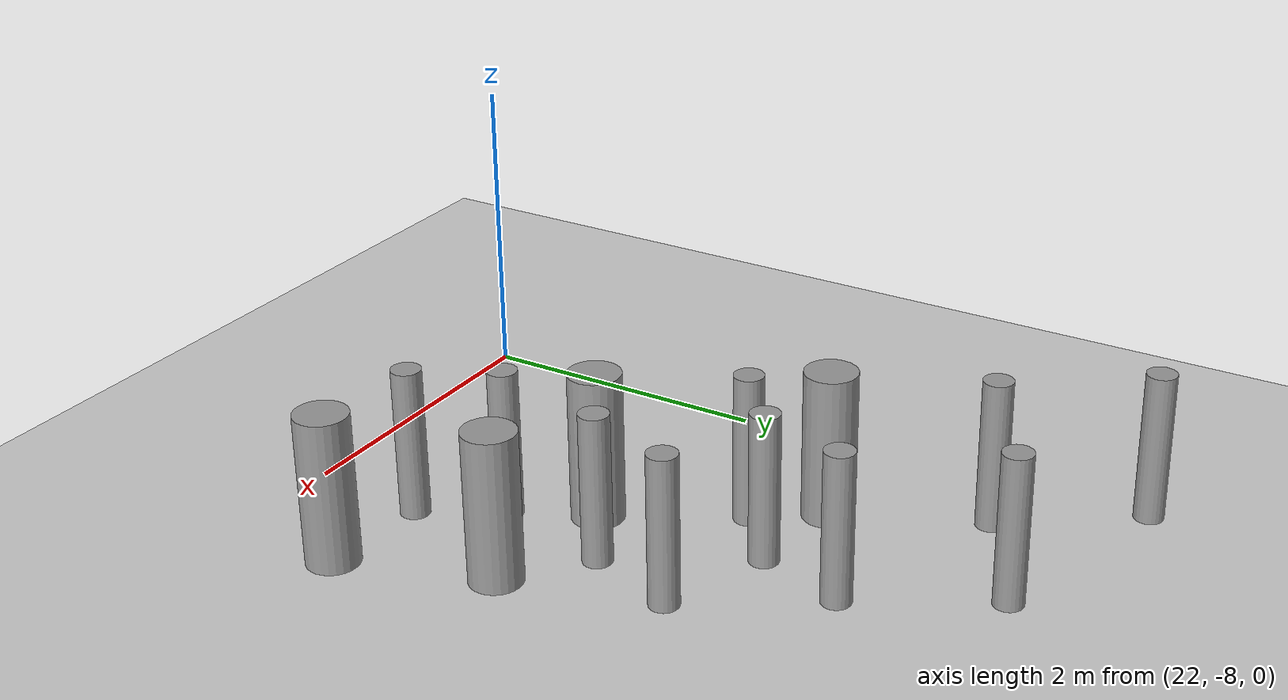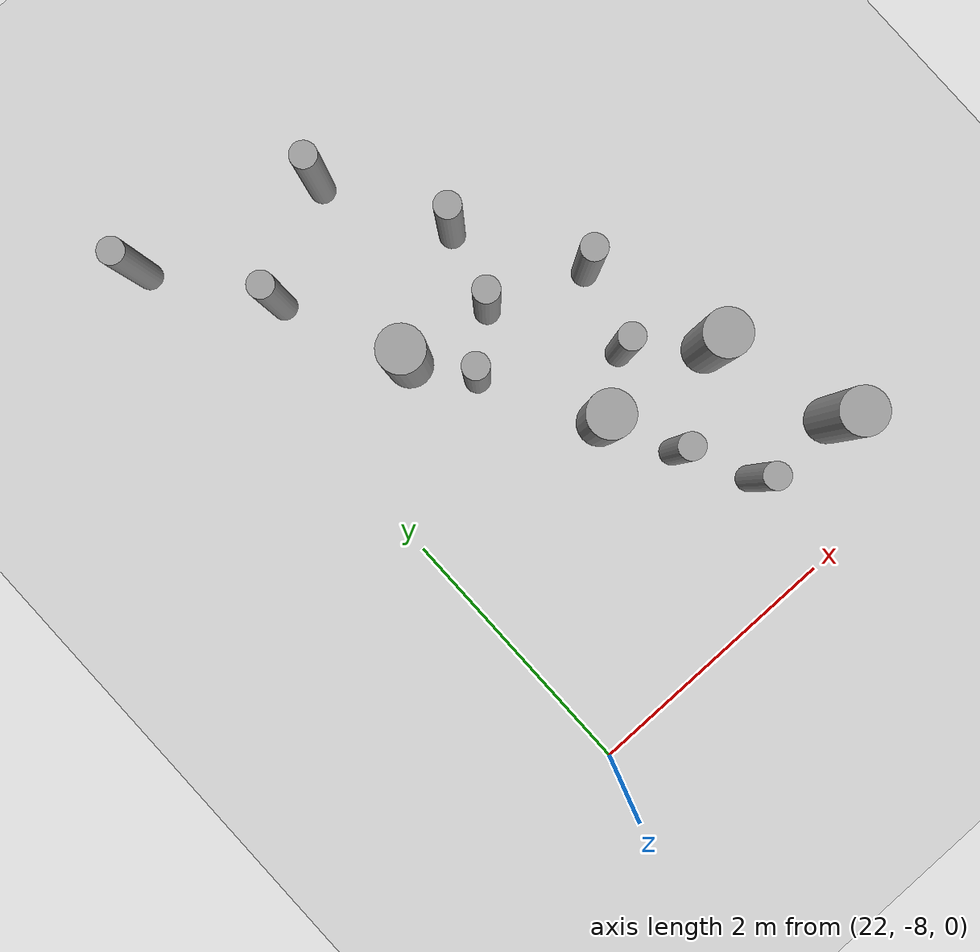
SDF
<sdf version="1.6">
 <world name="default">
  <model name="ground_plane">
   <static>1</static>
   <link name="link">
    <collision name="collision">
     <geometry><plane><normal>0 0 1</normal><size>100 100</size></plane></geometry>
     <surface><friction><ode><mu>100</mu><mu2>50</mu2></ode></friction></surface>
    </collision>
    <visual name="visual">
     <cast_shadows>0</cast_shadows>
     <geometry><plane><normal>0 0 1</normal><size>100 100</size></plane></geometry>
     <material>
      <script><uri>file://media/materials/scripts/gazebo.material</uri><name>Gazebo/Grey</name></script>
     </material>
    </visual>
   </link>
  </model>
  <model name="cyl_wall_clone_clone_1_clone_1_clone_clone_3_clone_0">
   <link name="link_0">
    <pose>-2.73893 -0.366465 0 0 -0 0</pose>
    <inertial>
     <mass>0.0374993</mass>
     <inertia>
      <ixx>0.00321281</ixx>
      <ixy>0</ixy>
      <ixz>0</ixz>
      <iyy>0.00321281</iyy>
      <iyz>0</iyz>
      <izz>0.000175774</izz>
     </inertia>
    </inertial>
    <visual name="visual">
     <geometry><cylinder><radius>0.0968661</radius><length>1</length></cylinder></geometry>
     <material>
      <lighting>1</lighting>
      <script><uri>file://media/materials/scripts/gazebo.material</uri><name>Gazebo/Grey</name></script>
      <ambient>0.3 0.3 0.3 1</ambient>
      <diffuse>0.7 0.7 0.7 1</diffuse>
      <specular>0.01 0.01 0.01 1</specular>
      <emissive>0 0 0 1</emissive>
     </material>
    </visual>
    <collision name="collision">
     <geometry><cylinder><radius>0.096866</radius><length>1</length></cylinder></geometry>
     <surface>
      <friction>
       <ode><mu>1</mu><mu2>1</mu2><fdir1>0 0 0</fdir1><slip1>0</slip1><slip2>0</slip2></ode>
       <torsional>
        <coefficient>1</coefficient>
        <patch_radius>0</patch_radius>
        <surface_radius>0</surface_radius>
        <use_patch_radius>1</use_patch_radius>
        <ode><slip>0</slip></ode>
       </torsional>
      </friction>
      <bounce><restitution_coefficient>0</restitution_coefficient><threshold>1e+06</threshold></bounce>
      <contact>
       <collide_without_contact>0</collide_without_contact>
       <collide_without_contact_bitmask>1</collide_without_contact_bitmask>
       <collide_bitmask>1</collide_bitmask>
       <ode>
        <soft_cfm>0</soft_cfm>
        <soft_erp>0.2</soft_erp>
        <kp>1e+13</kp>
        <kd>1</kd>
        <max_vel>0.01</max_vel>
        <min_depth>0</min_depth>
       </ode>
       <bullet>
        <split_impulse>1</split_impulse>
        <split_impulse_penetration_threshold>-0.01</split_impulse_penetration_threshold>
        <soft_cfm>0</soft_cfm>
        <soft_erp>0.2</soft_erp>
        <kp>1e+13</kp>
        <kd>1</kd>
       </bullet>
      </contact>
     </surface>
    </collision>
   </link>
   <link name="link_0_clone">
    <pose>-1.73893 0.61877 0 0 -0 0</pose>
    <inertial>
     <mass>0.0374993</mass>
     <inertia>
      <ixx>0.00321281</ixx>
      <ixy>0</ixy>
      <ixz>0</ixz>
      <iyy>0.00321281</iyy>
      <iyz>0</iyz>
      <izz>0.000175774</izz>
     </inertia>
    </inertial>
    <visual name="visual">
     <geometry><cylinder><radius>0.0968661</radius><length>1</length></cylinder></geometry>
     <material>
      <lighting>1</lighting>
      <script><uri>file://media/materials/scripts/gazebo.material</uri><name>Gazebo/Grey</name></script>
      <ambient>0.3 0.3 0.3 1</ambient>
      <diffuse>0.7 0.7 0.7 1</diffuse>
      <specular>0.01 0.01 0.01 1</specular>
      <emissive>0 0 0 1</emissive>
      <shader type="pixel"/>
     </material>
    </visual>
    <collision name="collision">
     <geometry><cylinder><radius>0.096866</radius><length>1</length></cylinder></geometry>
     <surface>
      <friction>
       <ode><mu>1</mu><mu2>1</mu2><fdir1>0 0 0</fdir1><slip1>0</slip1><slip2>0</slip2></ode>
       <torsional>
        <coefficient>1</coefficient>
        <patch_radius>0</patch_radius>
        <surface_radius>0</surface_radius>
        <use_patch_radius>1</use_patch_radius>
        <ode><slip>0</slip></ode>
       </torsional>
      </friction>
      <bounce><restitution_coefficient>0</restitution_coefficient><threshold>1e+06</threshold></bounce>
      <contact>
       <collide_without_contact>0</collide_without_contact>
       <collide_without_contact_bitmask>1</collide_without_contact_bitmask>
       <collide_bitmask>1</collide_bitmask>
       <ode>
        <soft_cfm>0</soft_cfm>
        <soft_erp>0.2</soft_erp>
        <kp>1e+13</kp>
        <kd>1</kd>
        <max_vel>0.01</max_vel>
        <min_depth>0</min_depth>
       </ode>
       <bullet>
        <split_impulse>1</split_impulse>
        <split_impulse_penetration_threshold>-0.01</split_impulse_penetration_threshold>
        <soft_cfm>0</soft_cfm>
        <soft_erp>0.2</soft_erp>
        <kp>1e+13</kp>
        <kd>1</kd>
       </bullet>
      </contact>
     </surface>
    </collision>
   </link>
   <link name="link_0_clone_clone">
    <pose>-0.327073 0.143919 0 0 -0 0</pose>
    <inertial>
     <mass>0.0374993</mass>
     <inertia>
      <ixx>0.00321281</ixx>
      <ixy>0</ixy>
      <ixz>0</ixz>
      <iyy>0.00321281</iyy>
      <iyz>0</iyz>
      <izz>0.000175774</izz>
     </inertia>
    </inertial>
    <visual name="visual">
     <geometry><cylinder><radius>0.0968661</radius><length>1</length></cylinder></geometry>
     <material>
      <lighting>1</lighting>
      <script><uri>file://media/materials/scripts/gazebo.material</uri><name>Gazebo/Grey</name></script>
      <ambient>0.3 0.3 0.3 1</ambient>
      <diffuse>0.7 0.7 0.7 1</diffuse>
      <specular>0.01 0.01 0.01 1</specular>
      <emissive>0 0 0 1</emissive>
      <shader type="pixel"/>
     </material>
    </visual>
    <collision name="collision">
     <geometry><cylinder><radius>0.096866</radius><length>1</length></cylinder></geometry>
     <surface>
      <friction>
       <ode><mu>1</mu><mu2>1</mu2><fdir1>0 0 0</fdir1><slip1>0</slip1><slip2>0</slip2></ode>
       <torsional>
        <coefficient>1</coefficient>
        <patch_radius>0</patch_radius>
        <surface_radius>0</surface_radius>
        <use_patch_radius>1</use_patch_radius>
        <ode><slip>0</slip></ode>
       </torsional>
      </friction>
      <bounce><restitution_coefficient>0</restitution_coefficient><threshold>1e+06</threshold></bounce>
      <contact>
       <collide_without_contact>0</collide_without_contact>
       <collide_without_contact_bitmask>1</collide_without_contact_bitmask>
       <collide_bitmask>1</collide_bitmask>
       <ode>
        <soft_cfm>0</soft_cfm>
        <soft_erp>0.2</soft_erp>
        <kp>1e+13</kp>
        <kd>1</kd>
        <max_vel>0.01</max_vel>
        <min_depth>0</min_depth>
       </ode>
       <bullet>
        <split_impulse>1</split_impulse>
        <split_impulse_penetration_threshold>-0.01</split_impulse_penetration_threshold>
        <soft_cfm>0</soft_cfm>
        <soft_erp>0.2</soft_erp>
        <kp>1e+13</kp>
        <kd>1</kd>
       </bullet>
      </contact>
     </surface>
    </collision>
   </link>
   <link name="link_0_clone_clone_0">
    <pose>1.26107 -0.419359 0 0 -0 0</pose>
    <inertial>
     <mass>0.0374993</mass>
     <inertia>
      <ixx>0.00321281</ixx>
      <ixy>0</ixy>
      <ixz>0</ixz>
      <iyy>0.00321281</iyy>
      <iyz>0</iyz>
      <izz>0.000175774</izz>
     </inertia>
    </inertial>
    <visual name="visual">
     <geometry><cylinder><radius>0.0968661</radius><length>1</length></cylinder></geometry>
     <material>
      <lighting>1</lighting>
      <script><uri>file://media/materials/scripts/gazebo.material</uri><name>Gazebo/Grey</name></script>
      <ambient>0.3 0.3 0.3 1</ambient>
      <diffuse>0.7 0.7 0.7 1</diffuse>
      <specular>0.01 0.01 0.01 1</specular>
      <emissive>0 0 0 1</emissive>
      <shader type="pixel"/>
     </material>
    </visual>
    <collision name="collision">
     <geometry><cylinder><radius>0.096866</radius><length>1</length></cylinder></geometry>
     <surface>
      <friction>
       <ode><mu>1</mu><mu2>1</mu2><fdir1>0 0 0</fdir1><slip1>0</slip1><slip2>0</slip2></ode>
       <torsional>
        <coefficient>1</coefficient>
        <patch_radius>0</patch_radius>
        <surface_radius>0</surface_radius>
        <use_patch_radius>1</use_patch_radius>
        <ode><slip>0</slip></ode>
       </torsional>
      </friction>
      <bounce><restitution_coefficient>0</restitution_coefficient><threshold>1e+06</threshold></bounce>
      <contact>
       <collide_without_contact>0</collide_without_contact>
       <collide_without_contact_bitmask>1</collide_without_contact_bitmask>
       <collide_bitmask>1</collide_bitmask>
       <ode>
        <soft_cfm>0</soft_cfm>
        <soft_erp>0.2</soft_erp>
        <kp>1e+13</kp>
        <kd>1</kd>
        <max_vel>0.01</max_vel>
        <min_depth>0</min_depth>
       </ode>
       <bullet>
        <split_impulse>1</split_impulse>
        <split_impulse_penetration_threshold>-0.01</split_impulse_penetration_threshold>
        <soft_cfm>0</soft_cfm>
        <soft_erp>0.2</soft_erp>
        <kp>1e+13</kp>
        <kd>1</kd>
       </bullet>
      </contact>
     </surface>
    </collision>
   </link>
   <link name="link_0_clone_clone_1">
    <pose>-1.73893 -0.277168 0 0 -0 0</pose>
    <inertial>
     <mass>0.0374993</mass>
     <inertia>
      <ixx>0.00321281</ixx>
      <ixy>0</ixy>
      <ixz>0</ixz>
      <iyy>0.00321281</iyy>
      <iyz>0</iyz>
      <izz>0.000175774</izz>
     </inertia>
    </inertial>
    <visual name="visual">
     <geometry><cylinder><radius>0.0968661</radius><length>1</length></cylinder></geometry>
     <material>
      <lighting>1</lighting>
      <script><uri>file://media/materials/scripts/gazebo.material</uri><name>Gazebo/Grey</name></script>
      <ambient>0.3 0.3 0.3 1</ambient>
      <diffuse>0.7 0.7 0.7 1</diffuse>
      <specular>0.01 0.01 0.01 1</specular>
      <emissive>0 0 0 1</emissive>
      <shader type="pixel"/>
     </material>
    </visual>
    <collision name="collision">
     <geometry><cylinder><radius>0.096866</radius><length>1</length></cylinder></geometry>
     <surface>
      <friction>
       <ode><mu>1</mu><mu2>1</mu2><fdir1>0 0 0</fdir1><slip1>0</slip1><slip2>0</slip2></ode>
       <torsional>
        <coefficient>1</coefficient>
        <patch_radius>0</patch_radius>
        <surface_radius>0</surface_radius>
        <use_patch_radius>1</use_patch_radius>
        <ode><slip>0</slip></ode>
       </torsional>
      </friction>
      <bounce><restitution_coefficient>0</restitution_coefficient><threshold>1e+06</threshold></bounce>
      <contact>
       <collide_without_contact>0</collide_without_contact>
       <collide_without_contact_bitmask>1</collide_without_contact_bitmask>
       <collide_bitmask>1</collide_bitmask>
       <ode>
        <soft_cfm>0</soft_cfm>
        <soft_erp>0.2</soft_erp>
        <kp>1e+13</kp>
        <kd>1</kd>
        <max_vel>0.01</max_vel>
        <min_depth>0</min_depth>
       </ode>
       <bullet>
        <split_impulse>1</split_impulse>
        <split_impulse_penetration_threshold>-0.01</split_impulse_penetration_threshold>
        <soft_cfm>0</soft_cfm>
        <soft_erp>0.2</soft_erp>
        <kp>1e+13</kp>
        <kd>1</kd>
       </bullet>
      </contact>
     </surface>
    </collision>
   </link>
   <link name="link_0_clone_clone_2">
    <pose>-0.738934 0.593961 0 0 -0 0</pose>
    <inertial>
     <mass>0.0374993</mass>
     <inertia>
      <ixx>0.00321281</ixx>
      <ixy>0</ixy>
      <ixz>0</ixz>
      <iyy>0.00321281</iyy>
      <iyz>0</iyz>
      <izz>0.000175774</izz>
     </inertia>
    </inertial>
    <visual name="visual">
     <geometry><cylinder><radius>0.0968661</radius><length>1</length></cylinder></geometry>
     <material>
      <lighting>1</lighting>
      <script><uri>file://media/materials/scripts/gazebo.material</uri><name>Gazebo/Grey</name></script>
      <ambient>0.3 0.3 0.3 1</ambient>
      <diffuse>0.7 0.7 0.7 1</diffuse>
      <specular>0.01 0.01 0.01 1</specular>
      <emissive>0 0 0 1</emissive>
      <shader type="pixel"/>
     </material>
    </visual>
    <collision name="collision">
     <geometry><cylinder><radius>0.096866</radius><length>1</length></cylinder></geometry>
     <surface>
      <friction>
       <ode><mu>1</mu><mu2>1</mu2><fdir1>0 0 0</fdir1><slip1>0</slip1><slip2>0</slip2></ode>
       <torsional>
        <coefficient>1</coefficient>
        <patch_radius>0</patch_radius>
        <surface_radius>0</surface_radius>
        <use_patch_radius>1</use_patch_radius>
        <ode><slip>0</slip></ode>
       </torsional>
      </friction>
      <bounce><restitution_coefficient>0</restitution_coefficient><threshold>1e+06</threshold></bounce>
      <contact>
       <collide_without_contact>0</collide_without_contact>
       <collide_without_contact_bitmask>1</collide_without_contact_bitmask>
       <collide_bitmask>1</collide_bitmask>
       <ode>
        <soft_cfm>0</soft_cfm>
        <soft_erp>0.2</soft_erp>
        <kp>1e+13</kp>
        <kd>1</kd>
        <max_vel>0.01</max_vel>
        <min_depth>0</min_depth>
       </ode>
       <bullet>
        <split_impulse>1</split_impulse>
        <split_impulse_penetration_threshold>-0.01</split_impulse_penetration_threshold>
        <soft_cfm>0</soft_cfm>
        <soft_erp>0.2</soft_erp>
        <kp>1e+13</kp>
        <kd>1</kd>
       </bullet>
      </contact>
     </surface>
    </collision>
   </link>
   <link name="link_0_clone_clone_3">
    <pose>0.261066 0.624849 0 0 -0 0</pose>
    <inertial>
     <mass>0.0374993</mass>
     <inertia>
      <ixx>0.00321281</ixx>
      <ixy>0</ixy>
      <ixz>0</ixz>
      <iyy>0.00321281</iyy>
      <iyz>0</iyz>
      <izz>0.000175774</izz>
     </inertia>
    </inertial>
    <visual name="visual">
     <geometry><cylinder><radius>0.0968661</radius><length>1</length></cylinder></geometry>
     <material>
      <lighting>1</lighting>
      <script><uri>file://media/materials/scripts/gazebo.material</uri><name>Gazebo/Grey</name></script>
      <ambient>0.3 0.3 0.3 1</ambient>
      <diffuse>0.7 0.7 0.7 1</diffuse>
      <specular>0.01 0.01 0.01 1</specular>
      <emissive>0 0 0 1</emissive>
      <shader type="pixel"/>
     </material>
    </visual>
    <collision name="collision">
     <geometry><cylinder><radius>0.096866</radius><length>1</length></cylinder></geometry>
     <surface>
      <friction>
       <ode><mu>1</mu><mu2>1</mu2><fdir1>0 0 0</fdir1><slip1>0</slip1><slip2>0</slip2></ode>
       <torsional>
        <coefficient>1</coefficient>
        <patch_radius>0</patch_radius>
        <surface_radius>0</surface_radius>
        <use_patch_radius>1</use_patch_radius>
        <ode><slip>0</slip></ode>
       </torsional>
      </friction>
      <bounce><restitution_coefficient>0</restitution_coefficient><threshold>1e+06</threshold></bounce>
      <contact>
       <collide_without_contact>0</collide_without_contact>
       <collide_without_contact_bitmask>1</collide_without_contact_bitmask>
       <collide_bitmask>1</collide_bitmask>
       <ode>
        <soft_cfm>0</soft_cfm>
        <soft_erp>0.2</soft_erp>
        <kp>1e+13</kp>
        <kd>1</kd>
        <max_vel>0.01</max_vel>
        <min_depth>0</min_depth>
       </ode>
       <bullet>
        <split_impulse>1</split_impulse>
        <split_impulse_penetration_threshold>-0.01</split_impulse_penetration_threshold>
        <soft_cfm>0</soft_cfm>
        <soft_erp>0.2</soft_erp>
        <kp>1e+13</kp>
        <kd>1</kd>
       </bullet>
      </contact>
     </surface>
    </collision>
   </link>
   <link name="link_0_clone_clone_4">
    <pose>-0.239049 -0.353105 0 0 -0 0</pose>
    <inertial>
     <mass>0.0374993</mass>
     <inertia>
      <ixx>0.00321281</ixx>
      <ixy>0</ixy>
      <ixz>0</ixz>
      <iyy>0.00321281</iyy>
      <iyz>0</iyz>
      <izz>0.000175774</izz>
     </inertia>
    </inertial>
    <visual name="visual">
     <geometry><cylinder><radius>0.0968661</radius><length>1</length></cylinder></geometry>
     <material>
      <lighting>1</lighting>
      <script><uri>file://media/materials/scripts/gazebo.material</uri><name>Gazebo/Grey</name></script>
      <ambient>0.3 0.3 0.3 1</ambient>
      <diffuse>0.7 0.7 0.7 1</diffuse>
      <specular>0.01 0.01 0.01 1</specular>
      <emissive>0 0 0 1</emissive>
      <shader type="pixel"/>
     </material>
    </visual>
    <collision name="collision">
     <geometry><cylinder><radius>0.096866</radius><length>1</length></cylinder></geometry>
     <surface>
      <friction>
       <ode><mu>1</mu><mu2>1</mu2><fdir1>0 0 0</fdir1><slip1>0</slip1><slip2>0</slip2></ode>
       <torsional>
        <coefficient>1</coefficient>
        <patch_radius>0</patch_radius>
        <surface_radius>0</surface_radius>
        <use_patch_radius>1</use_patch_radius>
        <ode><slip>0</slip></ode>
       </torsional>
      </friction>
      <bounce><restitution_coefficient>0</restitution_coefficient><threshold>1e+06</threshold></bounce>
      <contact>
       <collide_without_contact>0</collide_without_contact>
       <collide_without_contact_bitmask>1</collide_without_contact_bitmask>
       <collide_bitmask>1</collide_bitmask>
       <ode>
        <soft_cfm>0</soft_cfm>
        <soft_erp>0.2</soft_erp>
        <kp>1e+13</kp>
        <kd>1</kd>
        <max_vel>0.01</max_vel>
        <min_depth>0</min_depth>
       </ode>
       <bullet>
        <split_impulse>1</split_impulse>
        <split_impulse_penetration_threshold>-0.01</split_impulse_penetration_threshold>
        <soft_cfm>0</soft_cfm>
        <soft_erp>0.2</soft_erp>
        <kp>1e+13</kp>
        <kd>1</kd>
       </bullet>
      </contact>
     </surface>
    </collision>
   </link>
   <link name="link_0_clone_clone_5">
    <pose>0.672792 0.143919 0 0 -0 0</pose>
    <inertial>
     <mass>0.0374993</mass>
     <inertia>
      <ixx>0.00321281</ixx>
      <ixy>0</ixy>
      <ixz>0</ixz>
      <iyy>0.00321281</iyy>
      <iyz>0</iyz>
      <izz>0.000175774</izz>
     </inertia>
    </inertial>
    <visual name="visual">
     <geometry><cylinder><radius>0.0968661</radius><length>1</length></cylinder></geometry>
     <material>
      <lighting>1</lighting>
      <script><uri>file://media/materials/scripts/gazebo.material</uri><name>Gazebo/Grey</name></script>
      <ambient>0.3 0.3 0.3 1</ambient>
      <diffuse>0.7 0.7 0.7 1</diffuse>
      <specular>0.01 0.01 0.01 1</specular>
      <emissive>0 0 0 1</emissive>
      <shader type="pixel"/>
     </material>
    </visual>
    <collision name="collision">
     <geometry><cylinder><radius>0.096866</radius><length>1</length></cylinder></geometry>
     <surface>
      <friction>
       <ode><mu>1</mu><mu2>1</mu2><fdir1>0 0 0</fdir1><slip1>0</slip1><slip2>0</slip2></ode>
       <torsional>
        <coefficient>1</coefficient>
        <patch_radius>0</patch_radius>
        <surface_radius>0</surface_radius>
        <use_patch_radius>1</use_patch_radius>
        <ode><slip>0</slip></ode>
       </torsional>
      </friction>
      <bounce><restitution_coefficient>0</restitution_coefficient><threshold>1e+06</threshold></bounce>
      <contact>
       <collide_without_contact>0</collide_without_contact>
       <collide_without_contact_bitmask>1</collide_without_contact_bitmask>
       <collide_bitmask>1</collide_bitmask>
       <ode>
        <soft_cfm>0</soft_cfm>
        <soft_erp>0.2</soft_erp>
        <kp>1e+13</kp>
        <kd>1</kd>
        <max_vel>0.01</max_vel>
        <min_depth>0</min_depth>
       </ode>
       <bullet>
        <split_impulse>1</split_impulse>
        <split_impulse_penetration_threshold>-0.01</split_impulse_penetration_threshold>
        <soft_cfm>0</soft_cfm>
        <soft_erp>0.2</soft_erp>
        <kp>1e+13</kp>
        <kd>1</kd>
       </bullet>
      </contact>
     </surface>
    </collision>
   </link>
   <link name="link_0_clone_clone_6">
    <pose>1.84596 -0.433423 0 0 -0 0</pose>
    <inertial>
     <mass>0.0374993</mass>
     <inertia>
      <ixx>0.00321281</ixx>
      <ixy>0</ixy>
      <ixz>0</ixz>
      <iyy>0.00321281</iyy>
      <iyz>0</iyz>
      <izz>0.000175774</izz>
     </inertia>
    </inertial>
    <visual name="visual">
     <geometry><cylinder><radius>0.0968661</radius><length>1</length></cylinder></geometry>
     <material>
      <lighting>1</lighting>
      <script><uri>file://media/materials/scripts/gazebo.material</uri><name>Gazebo/Grey</name></script>
      <ambient>0.3 0.3 0.3 1</ambient>
      <diffuse>0.7 0.7 0.7 1</diffuse>
      <specular>0.01 0.01 0.01 1</specular>
      <emissive>0 0 0 1</emissive>
      <shader type="pixel"/>
     </material>
    </visual>
    <collision name="collision">
     <geometry><cylinder><radius>0.096866</radius><length>1</length></cylinder></geometry>
     <surface>
      <friction>
       <ode><mu>1</mu><mu2>1</mu2><fdir1>0 0 0</fdir1><slip1>0</slip1><slip2>0</slip2></ode>
       <torsional>
        <coefficient>1</coefficient>
        <patch_radius>0</patch_radius>
        <surface_radius>0</surface_radius>
        <use_patch_radius>1</use_patch_radius>
        <ode><slip>0</slip></ode>
       </torsional>
      </friction>
      <bounce><restitution_coefficient>0</restitution_coefficient><threshold>1e+06</threshold></bounce>
      <contact>
       <collide_without_contact>0</collide_without_contact>
       <collide_without_contact_bitmask>1</collide_without_contact_bitmask>
       <collide_bitmask>1</collide_bitmask>
       <ode>
        <soft_cfm>0</soft_cfm>
        <soft_erp>0.2</soft_erp>
        <kp>1e+13</kp>
        <kd>1</kd>
        <max_vel>0.01</max_vel>
        <min_depth>0</min_depth>
       </ode>
       <bullet>
        <split_impulse>1</split_impulse>
        <split_impulse_penetration_threshold>-0.01</split_impulse_penetration_threshold>
        <soft_cfm>0</soft_cfm>
        <soft_erp>0.2</soft_erp>
        <kp>1e+13</kp>
        <kd>1</kd>
       </bullet>
      </contact>
     </surface>
    </collision>
   </link>
   <link name="link_1">
    <pose>-0.738934 -0.397931 0 0 -0 0</pose>
    <inertial>
     <mass>0.117398</mass>
     <inertia>
      <ixx>0.0106445</ixx>
      <ixy>0</ixy>
      <ixz>0</ixz>
      <iyy>0.0106445</iyy>
      <iyz>0</iyz>
      <izz>0.00172278</izz>
     </inertia>
    </inertial>
    <visual name="visual">
     <geometry><cylinder><radius>0.171317</radius><length>1</length></cylinder></geometry>
     <material>
      <lighting>1</lighting>
      <script><uri>file://media/materials/scripts/gazebo.material</uri><name>Gazebo/Grey</name></script>
      <ambient>0.3 0.3 0.3 1</ambient>
      <diffuse>0.7 0.7 0.7 1</diffuse>
      <specular>0.01 0.01 0.01 1</specular>
      <emissive>0 0 0 1</emissive>
     </material>
    </visual>
    <collision name="collision">
     <geometry><cylinder><radius>0.171317</radius><length>1</length></cylinder></geometry>
     <surface>
      <friction>
       <ode><mu>1</mu><mu2>1</mu2><fdir1>0 0 0</fdir1><slip1>0</slip1><slip2>0</slip2></ode>
       <torsional>
        <coefficient>1</coefficient>
        <patch_radius>0</patch_radius>
        <surface_radius>0</surface_radius>
        <use_patch_radius>1</use_patch_radius>
        <ode><slip>0</slip></ode>
       </torsional>
      </friction>
      <bounce><restitution_coefficient>0</restitution_coefficient><threshold>1e+06</threshold></bounce>
      <contact>
       <collide_without_contact>0</collide_without_contact>
       <collide_without_contact_bitmask>1</collide_without_contact_bitmask>
       <collide_bitmask>1</collide_bitmask>
       <ode>
        <soft_cfm>0</soft_cfm>
        <soft_erp>0.2</soft_erp>
        <kp>1e+13</kp>
        <kd>1</kd>
        <max_vel>0.01</max_vel>
        <min_depth>0</min_depth>
       </ode>
       <bullet>
        <split_impulse>1</split_impulse>
        <split_impulse_penetration_threshold>-0.01</split_impulse_penetration_threshold>
        <soft_cfm>0</soft_cfm>
        <soft_erp>0.2</soft_erp>
        <kp>1e+13</kp>
        <kd>1</kd>
       </bullet>
      </contact>
     </surface>
    </collision>
   </link>
   <link name="link_1_clone">
    <pose>0.697784 -0.380861 0 0 -0 0</pose>
    <inertial>
     <mass>0.117398</mass>
     <inertia>
      <ixx>0.0106445</ixx>
      <ixy>0</ixy>
      <ixz>0</ixz>
      <iyy>0.0106445</iyy>
      <iyz>0</iyz>
      <izz>0.00172278</izz>
     </inertia>
    </inertial>
    <visual name="visual">
     <geometry><cylinder><radius>0.171317</radius><length>1</length></cylinder></geometry>
     <material>
      <lighting>1</lighting>
      <script><uri>file://media/materials/scripts/gazebo.material</uri><name>Gazebo/Grey</name></script>
      <ambient>0.3 0.3 0.3 1</ambient>
      <diffuse>0.7 0.7 0.7 1</diffuse>
      <specular>0.01 0.01 0.01 1</specular>
      <emissive>0 0 0 1</emissive>
      <shader type="pixel"/>
     </material>
    </visual>
    <collision name="collision">
     <geometry><cylinder><radius>0.171317</radius><length>1</length></cylinder></geometry>
     <surface>
      <friction>
       <ode><mu>1</mu><mu2>1</mu2><fdir1>0 0 0</fdir1><slip1>0</slip1><slip2>0</slip2></ode>
       <torsional>
        <coefficient>1</coefficient>
        <patch_radius>0</patch_radius>
        <surface_radius>0</surface_radius>
        <use_patch_radius>1</use_patch_radius>
        <ode><slip>0</slip></ode>
       </torsional>
      </friction>
      <bounce><restitution_coefficient>0</restitution_coefficient><threshold>1e+06</threshold></bounce>
      <contact>
       <collide_without_contact>0</collide_without_contact>
       <collide_without_contact_bitmask>1</collide_without_contact_bitmask>
       <collide_bitmask>1</collide_bitmask>
       <ode>
        <soft_cfm>0</soft_cfm>
        <soft_erp>0.2</soft_erp>
        <kp>1e+13</kp>
        <kd>1</kd>
        <max_vel>0.01</max_vel>
        <min_depth>0</min_depth>
       </ode>
       <bullet>
        <split_impulse>1</split_impulse>
        <split_impulse_penetration_threshold>-0.01</split_impulse_penetration_threshold>
        <soft_cfm>0</soft_cfm>
        <soft_erp>0.2</soft_erp>
        <kp>1e+13</kp>
        <kd>1</kd>
       </bullet>
      </contact>
     </surface>
    </collision>
   </link>
   <link name="link_1_clone_0">
    <pose>1.26107 0.358974 0 0 -0 0</pose>
    <inertial>
     <mass>0.117398</mass>
     <inertia>
      <ixx>0.0106445</ixx>
      <ixy>0</ixy>
      <ixz>0</ixz>
      <iyy>0.0106445</iyy>
      <iyz>0</iyz>
      <izz>0.00172278</izz>
     </inertia>
    </inertial>
    <visual name="visual">
     <geometry><cylinder><radius>0.171317</radius><length>1</length></cylinder></geometry>
     <material>
      <lighting>1</lighting>
      <script><uri>file://media/materials/scripts/gazebo.material</uri><name>Gazebo/Grey</name></script>
      <ambient>0.3 0.3 0.3 1</ambient>
      <diffuse>0.7 0.7 0.7 1</diffuse>
      <specular>0.01 0.01 0.01 1</specular>
      <emissive>0 0 0 1</emissive>
      <shader type="pixel"/>
     </material>
    </visual>
    <collision name="collision">
     <geometry><cylinder><radius>0.171317</radius><length>1</length></cylinder></geometry>
     <surface>
      <friction>
       <ode><mu>1</mu><mu2>1</mu2><fdir1>0 0 0</fdir1><slip1>0</slip1><slip2>0</slip2></ode>
       <torsional>
        <coefficient>1</coefficient>
        <patch_radius>0</patch_radius>
        <surface_radius>0</surface_radius>
        <use_patch_radius>1</use_patch_radius>
        <ode><slip>0</slip></ode>
       </torsional>
      </friction>
      <bounce><restitution_coefficient>0</restitution_coefficient><threshold>1e+06</threshold></bounce>
      <contact>
       <collide_without_contact>0</collide_without_contact>
       <collide_without_contact_bitmask>1</collide_without_contact_bitmask>
       <collide_bitmask>1</collide_bitmask>
       <ode>
        <soft_cfm>0</soft_cfm>
        <soft_erp>0.2</soft_erp>
        <kp>1e+13</kp>
        <kd>1</kd>
        <max_vel>0.01</max_vel>
        <min_depth>0</min_depth>
       </ode>
       <bullet>
        <split_impulse>1</split_impulse>
        <split_impulse_penetration_threshold>-0.01</split_impulse_penetration_threshold>
        <soft_cfm>0</soft_cfm>
        <soft_erp>0.2</soft_erp>
        <kp>1e+13</kp>
        <kd>1</kd>
       </bullet>
      </contact>
     </surface>
    </collision>
   </link>
   <link name="link_1_clone_1">
    <pose>2.26107 0.143919 0 0 -0 0</pose>
    <inertial>
     <mass>0.117398</mass>
     <inertia>
      <ixx>0.0106445</ixx>
      <ixy>0</ixy>
      <ixz>0</ixz>
      <iyy>0.0106445</iyy>
      <iyz>0</iyz>
      <izz>0.00172278</izz>
     </inertia>
    </inertial>
    <visual name="visual">
     <geometry><cylinder><radius>0.171317</radius><length>1</length></cylinder></geometry>
     <material>
      <lighting>1</lighting>
      <script><uri>file://media/materials/scripts/gazebo.material</uri><name>Gazebo/Grey</name></script>
      <ambient>0.3 0.3 0.3 1</ambient>
      <diffuse>0.7 0.7 0.7 1</diffuse>
      <specular>0.01 0.01 0.01 1</specular>
      <emissive>0 0 0 1</emissive>
      <shader type="pixel"/>
     </material>
    </visual>
    <collision name="collision">
     <geometry><cylinder><radius>0.171317</radius><length>1</length></cylinder></geometry>
     <surface>
      <friction>
       <ode><mu>1</mu><mu2>1</mu2><fdir1>0 0 0</fdir1><slip1>0</slip1><slip2>0</slip2></ode>
       <torsional>
        <coefficient>1</coefficient>
        <patch_radius>0</patch_radius>
        <surface_radius>0</surface_radius>
        <use_patch_radius>1</use_patch_radius>
        <ode><slip>0</slip></ode>
       </torsional>
      </friction>
      <bounce><restitution_coefficient>0</restitution_coefficient><threshold>1e+06</threshold></bounce>
      <contact>
       <collide_without_contact>0</collide_without_contact>
       <collide_without_contact_bitmask>1</collide_without_contact_bitmask>
       <collide_bitmask>1</collide_bitmask>
       <ode>
        <soft_cfm>0</soft_cfm>
        <soft_erp>0.2</soft_erp>
        <kp>1e+13</kp>
        <kd>1</kd>
        <max_vel>0.01</max_vel>
        <min_depth>0</min_depth>
       </ode>
       <bullet>
        <split_impulse>1</split_impulse>
        <split_impulse_penetration_threshold>-0.01</split_impulse_penetration_threshold>
        <soft_cfm>0</soft_cfm>
        <soft_erp>0.2</soft_erp>
        <kp>1e+13</kp>
        <kd>1</kd>
       </bullet>
      </contact>
     </surface>
    </collision>
   </link>
   <static>1</static>
   <pose>23.5393 -5.38325 0.5 0 0 -1.04703</pose>
  </model>
 </world>
</sdf>
